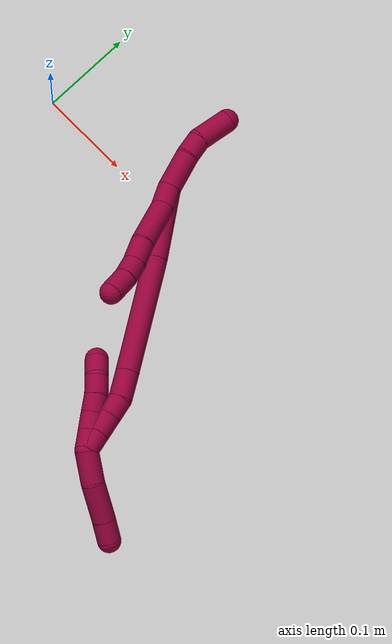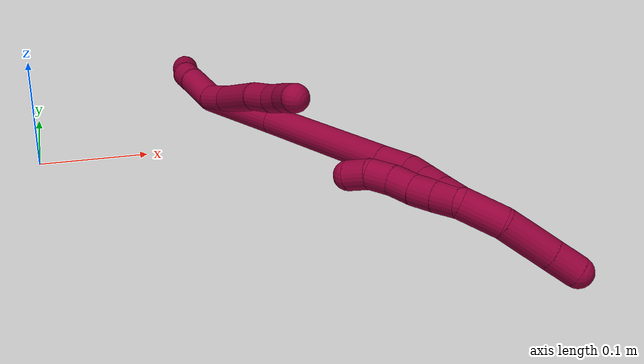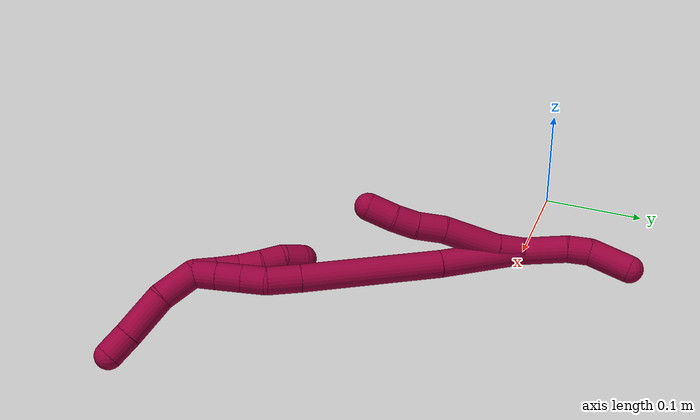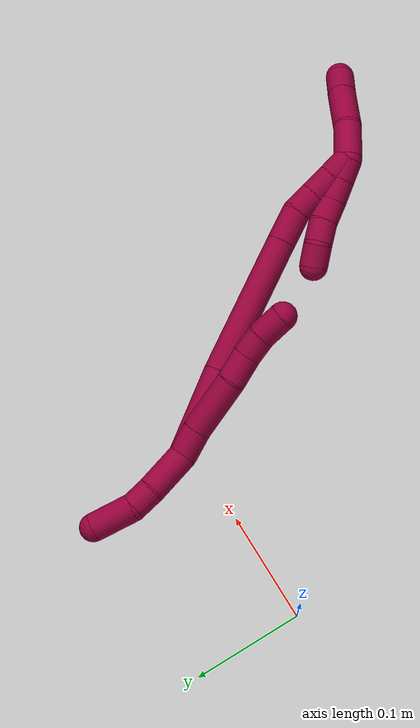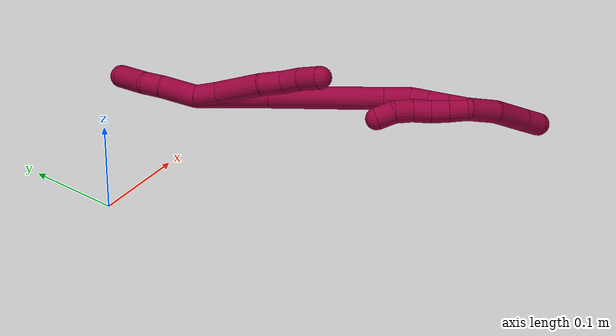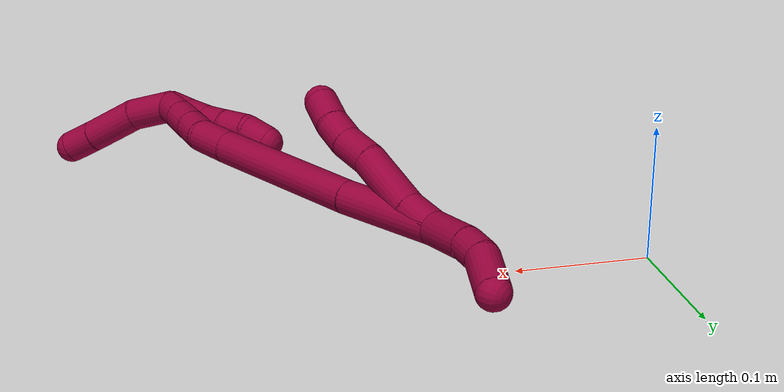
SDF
<sdf version="1.7">
 <world name="default">
  <model name="8">
   <static>0</static>
   <link name="8">
    <collision name="collision-cylinder-e_1_2_8">
     <pose>-0.001382 -0.003157 0.012522 0.246942 -0.10661 -0.013243</pose>
     <geometry><cylinder><radius>0.0125</radius><length>0.025975</length></cylinder></geometry>
     <surface>
      <friction><ode><mu>1.16</mu><mu2>1.16</mu2><slip1>0</slip1><slip2>0</slip2></ode></friction>
      <contact><ode><kp>1e+06</kp><kd>1</kd><max_vel>0</max_vel><min_depth>0.001</min_depth></ode></contact>
     </surface>
    </collision>
    <visual name="visual-cylinder-e_1_2_8">
     <pose>-0.001382 -0.003157 0.012522 0.246942 -0.10661 -0.013243</pose>
     <geometry><cylinder><radius>0.0125</radius><length>0.025975</length></cylinder></geometry>
     <material><ambient>0.584314 0 0.227451 1</ambient></material>
    </visual>
    <collision name="collision-cylinder-e_2_8_9">
     <pose>-0.006817 -0.016858 0.048483 0.422776 -0.156396 -0.033627</pose>
     <geometry><cylinder><radius>0.0125</radius><length>0.052037</length></cylinder></geometry>
     <surface>
      <friction><ode><mu>1.16</mu><mu2>1.16</mu2><slip1>0</slip1><slip2>0</slip2></ode></friction>
      <contact><ode><kp>1e+06</kp><kd>1</kd><max_vel>0</max_vel><min_depth>0.001</min_depth></ode></contact>
     </surface>
    </collision>
    <visual name="visual-cylinder-e_2_8_9">
     <pose>-0.006817 -0.016858 0.048483 0.422776 -0.156396 -0.033627</pose>
     <geometry><cylinder><radius>0.0125</radius><length>0.052037</length></cylinder></geometry>
     <material><ambient>0.584314 0 0.227451 1</ambient></material>
    </visual>
    <collision name="collision-cylinder-e_3_9_10">
     <pose>-0.011669 -0.030841 0.084344 0.269976 -0.061983 -0.008421</pose>
     <geometry><cylinder><radius>0.0125</radius><length>0.025831</length></cylinder></geometry>
     <surface>
      <friction><ode><mu>1.16</mu><mu2>1.16</mu2><slip1>0</slip1><slip2>0</slip2></ode></friction>
      <contact><ode><kp>1e+06</kp><kd>1</kd><max_vel>0</max_vel><min_depth>0.001</min_depth></ode></contact>
     </surface>
    </collision>
    <visual name="visual-cylinder-e_3_9_10">
     <pose>-0.011669 -0.030841 0.084344 0.269976 -0.061983 -0.008421</pose>
     <geometry><cylinder><radius>0.0125</radius><length>0.025831</length></cylinder></geometry>
     <material><ambient>0.584314 0 0.227451 1</ambient></material>
    </visual>
    <collision name="collision-cylinder-e_4_10_11">
     <pose>-0.01392 -0.038699 0.106273 0.435229 -0.137475 -0.030444</pose>
     <geometry><cylinder><radius>0.0125</radius><length>0.021165</length></cylinder></geometry>
     <surface>
      <friction><ode><mu>1.16</mu><mu2>1.16</mu2><slip1>0</slip1><slip2>0</slip2></ode></friction>
      <contact><ode><kp>1e+06</kp><kd>1</kd><max_vel>0</max_vel><min_depth>0.001</min_depth></ode></contact>
     </surface>
    </collision>
    <visual name="visual-cylinder-e_4_10_11">
     <pose>-0.01392 -0.038699 0.106273 0.435229 -0.137475 -0.030444</pose>
     <geometry><cylinder><radius>0.0125</radius><length>0.021165</length></cylinder></geometry>
     <material><ambient>0.584314 0 0.227451 1</ambient></material>
    </visual>
    <collision name="collision-cylinder-e_5_11_6">
     <pose>-0.016007 -0.050157 0.126084 0.599198 -0.051003 -0.015758</pose>
     <geometry><cylinder><radius>0.0125</radius><length>0.024991</length></cylinder></geometry>
     <surface>
      <friction><ode><mu>1.16</mu><mu2>1.16</mu2><slip1>0</slip1><slip2>0</slip2></ode></friction>
      <contact><ode><kp>1e+06</kp><kd>1</kd><max_vel>0</max_vel><min_depth>0.001</min_depth></ode></contact>
     </surface>
    </collision>
    <visual name="visual-cylinder-e_5_11_6">
     <pose>-0.016007 -0.050157 0.126084 0.599198 -0.051003 -0.015758</pose>
     <geometry><cylinder><radius>0.0125</radius><length>0.024991</length></cylinder></geometry>
     <material><ambient>0.584314 0 0.227451 1</ambient></material>
    </visual>
    <collision name="collision-cylinder-e_1_2_12">
     <pose>-0.006131 0.005028 -0.018652 -2.87828 -0.307335 1.72685</pose>
     <geometry><cylinder><radius>0.0125</radius><length>0.040534</length></cylinder></geometry>
     <surface>
      <friction><ode><mu>1.16</mu><mu2>1.16</mu2><slip1>0</slip1><slip2>0</slip2></ode></friction>
      <contact><ode><kp>1e+06</kp><kd>1</kd><max_vel>0</max_vel><min_depth>0.001</min_depth></ode></contact>
     </surface>
    </collision>
    <visual name="visual-cylinder-e_1_2_12">
     <pose>-0.006131 0.005028 -0.018652 -2.87828 -0.307335 1.72685</pose>
     <geometry><cylinder><radius>0.0125</radius><length>0.040534</length></cylinder></geometry>
     <material><ambient>0.584314 0 0.227451 1</ambient></material>
    </visual>
    <collision name="collision-cylinder-e_2_12_13">
     <pose>-0.014522 0.014244 -0.04676 -2.72471 -0.215063 0.943802</pose>
     <geometry><cylinder><radius>0.0125</radius><length>0.021172</length></cylinder></geometry>
     <surface>
      <friction><ode><mu>1.16</mu><mu2>1.16</mu2><slip1>0</slip1><slip2>0</slip2></ode></friction>
      <contact><ode><kp>1e+06</kp><kd>1</kd><max_vel>0</max_vel><min_depth>0.001</min_depth></ode></contact>
     </surface>
    </collision>
    <visual name="visual-cylinder-e_2_12_13">
     <pose>-0.014522 0.014244 -0.04676 -2.72471 -0.215063 0.943802</pose>
     <geometry><cylinder><radius>0.0125</radius><length>0.021172</length></cylinder></geometry>
     <material><ambient>0.584314 0 0.227451 1</ambient></material>
    </visual>
    <collision name="collision-cylinder-e_3_13_5">
     <pose>-0.02038 0.031398 -0.069837 -2.3808 -0.189115 0.465747</pose>
     <geometry><cylinder><radius>0.0125</radius><length>0.038294</length></cylinder></geometry>
     <surface>
      <friction><ode><mu>1.16</mu><mu2>1.16</mu2><slip1>0</slip1><slip2>0</slip2></ode></friction>
      <contact><ode><kp>1e+06</kp><kd>1</kd><max_vel>0</max_vel><min_depth>0.001</min_depth></ode></contact>
     </surface>
    </collision>
    <visual name="visual-cylinder-e_3_13_5">
     <pose>-0.02038 0.031398 -0.069837 -2.3808 -0.189115 0.465747</pose>
     <geometry><cylinder><radius>0.0125</radius><length>0.038294</length></cylinder></geometry>
     <material><ambient>0.584314 0 0.227451 1</ambient></material>
    </visual>
    <collision name="collision-cylinder-e_1_2_14">
     <pose>0.002574 -0.000787 0.039432 0.019968 0.065164 0.000651</pose>
     <geometry><cylinder><radius>0.0125</radius><length>0.079047</length></cylinder></geometry>
     <surface>
      <friction><ode><mu>1.16</mu><mu2>1.16</mu2><slip1>0</slip1><slip2>0</slip2></ode></friction>
      <contact><ode><kp>1e+06</kp><kd>1</kd><max_vel>0</max_vel><min_depth>0.001</min_depth></ode></contact>
     </surface>
    </collision>
    <visual name="visual-cylinder-e_1_2_14">
     <pose>0.002574 -0.000787 0.039432 0.019968 0.065164 0.000651</pose>
     <geometry><cylinder><radius>0.0125</radius><length>0.079047</length></cylinder></geometry>
     <material><ambient>0.584314 0 0.227451 1</ambient></material>
    </visual>
    <collision name="collision-cylinder-e_2_14_15">
     <pose>0.009521 -0.006425 0.14166 0.077086 0.069335 0.002675</pose>
     <geometry><cylinder><radius>0.0125</radius><length>0.12627</length></cylinder></geometry>
     <surface>
      <friction><ode><mu>1.16</mu><mu2>1.16</mu2><slip1>0</slip1><slip2>0</slip2></ode></friction>
      <contact><ode><kp>1e+06</kp><kd>1</kd><max_vel>0</max_vel><min_depth>0.001</min_depth></ode></contact>
     </surface>
    </collision>
    <visual name="visual-cylinder-e_2_14_15">
     <pose>0.009521 -0.006425 0.14166 0.077086 0.069335 0.002675</pose>
     <geometry><cylinder><radius>0.0125</radius><length>0.12627</length></cylinder></geometry>
     <material><ambient>0.584314 0 0.227451 1</ambient></material>
    </visual>
    <collision name="collision-cylinder-e_3_15_16">
     <pose>0.014729 -0.012742 0.219339 0.098234 0.055677 0.002738</pose>
     <geometry><cylinder><radius>0.0125</radius><length>0.029958</length></cylinder></geometry>
     <surface>
      <friction><ode><mu>1.16</mu><mu2>1.16</mu2><slip1>0</slip1><slip2>0</slip2></ode></friction>
      <contact><ode><kp>1e+06</kp><kd>1</kd><max_vel>0</max_vel><min_depth>0.001</min_depth></ode></contact>
     </surface>
    </collision>
    <visual name="visual-cylinder-e_3_15_16">
     <pose>0.014729 -0.012742 0.219339 0.098234 0.055677 0.002738</pose>
     <geometry><cylinder><radius>0.0125</radius><length>0.029958</length></cylinder></geometry>
     <material><ambient>0.584314 0 0.227451 1</ambient></material>
    </visual>
    <collision name="collision-cylinder-e_4_16_17">
     <pose>0.017719 -0.018014 0.243781 0.378856 0.206619 0.039751</pose>
     <geometry><cylinder><radius>0.0125</radius><length>0.021022</length></cylinder></geometry>
     <surface>
      <friction><ode><mu>1.16</mu><mu2>1.16</mu2><slip1>0</slip1><slip2>0</slip2></ode></friction>
      <contact><ode><kp>1e+06</kp><kd>1</kd><max_vel>0</max_vel><min_depth>0.001</min_depth></ode></contact>
     </surface>
    </collision>
    <visual name="visual-cylinder-e_4_16_17">
     <pose>0.017719 -0.018014 0.243781 0.378856 0.206619 0.039751</pose>
     <geometry><cylinder><radius>0.0125</radius><length>0.021022</length></cylinder></geometry>
     <material><ambient>0.584314 0 0.227451 1</ambient></material>
    </visual>
    <collision name="collision-cylinder-e_5_17_18">
     <pose>0.022133 -0.025867 0.263533 0.377958 0.203032 0.038961</pose>
     <geometry><cylinder><radius>0.0125</radius><length>0.022398</length></cylinder></geometry>
     <surface>
      <friction><ode><mu>1.16</mu><mu2>1.16</mu2><slip1>0</slip1><slip2>0</slip2></ode></friction>
      <contact><ode><kp>1e+06</kp><kd>1</kd><max_vel>0</max_vel><min_depth>0.001</min_depth></ode></contact>
     </surface>
    </collision>
    <visual name="visual-cylinder-e_5_17_18">
     <pose>0.022133 -0.025867 0.263533 0.377958 0.203032 0.038961</pose>
     <geometry><cylinder><radius>0.0125</radius><length>0.022398</length></cylinder></geometry>
     <material><ambient>0.584314 0 0.227451 1</ambient></material>
    </visual>
    <collision name="collision-cylinder-e_6_18_1">
     <pose>0.026458 -0.033805 0.283427 0.381463 0.19527 0.037818</pose>
     <geometry><cylinder><radius>0.0125</radius><length>0.021306</length></cylinder></geometry>
     <surface>
      <friction><ode><mu>1.16</mu><mu2>1.16</mu2><slip1>0</slip1><slip2>0</slip2></ode></friction>
      <contact><ode><kp>1e+06</kp><kd>1</kd><max_vel>0</max_vel><min_depth>0.001</min_depth></ode></contact>
     </surface>
    </collision>
    <visual name="visual-cylinder-e_6_18_1">
     <pose>0.026458 -0.033805 0.283427 0.381463 0.19527 0.037818</pose>
     <geometry><cylinder><radius>0.0125</radius><length>0.021306</length></cylinder></geometry>
     <material><ambient>0.584314 0 0.227451 1</ambient></material>
    </visual>
    <collision name="collision-cylinder-e_1_1_19">
     <pose>0.03153 -0.02996 0.308369 -0.469619 0.17403 -0.041731</pose>
     <geometry><cylinder><radius>0.0125</radius><length>0.03471</length></cylinder></geometry>
     <surface>
      <friction><ode><mu>1.16</mu><mu2>1.16</mu2><slip1>0</slip1><slip2>0</slip2></ode></friction>
      <contact><ode><kp>1e+06</kp><kd>1</kd><max_vel>0</max_vel><min_depth>0.001</min_depth></ode></contact>
     </surface>
    </collision>
    <visual name="visual-cylinder-e_1_1_19">
     <pose>0.03153 -0.02996 0.308369 -0.469619 0.17403 -0.041731</pose>
     <geometry><cylinder><radius>0.0125</radius><length>0.03471</length></cylinder></geometry>
     <material><ambient>0.584314 0 0.227451 1</ambient></material>
    </visual>
    <collision name="collision-cylinder-e_2_19_20">
     <pose>0.041058 -0.009842 0.339179 -0.671916 0.316857 -0.111465</pose>
     <geometry><cylinder><radius>0.0125</radius><length>0.041869</length></cylinder></geometry>
     <surface>
      <friction><ode><mu>1.16</mu><mu2>1.16</mu2><slip1>0</slip1><slip2>0</slip2></ode></friction>
      <contact><ode><kp>1e+06</kp><kd>1</kd><max_vel>0</max_vel><min_depth>0.001</min_depth></ode></contact>
     </surface>
    </collision>
    <visual name="visual-cylinder-e_2_19_20">
     <pose>0.041058 -0.009842 0.339179 -0.671916 0.316857 -0.111465</pose>
     <geometry><cylinder><radius>0.0125</radius><length>0.041869</length></cylinder></geometry>
     <material><ambient>0.584314 0 0.227451 1</ambient></material>
    </visual>
    <collision name="collision-cylinder-e_3_20_4">
     <pose>0.051241 0.009043 0.363773 -0.624391 0.317886 -0.103378</pose>
     <geometry><cylinder><radius>0.0125</radius><length>0.023422</length></cylinder></geometry>
     <surface>
      <friction><ode><mu>1.16</mu><mu2>1.16</mu2><slip1>0</slip1><slip2>0</slip2></ode></friction>
      <contact><ode><kp>1e+06</kp><kd>1</kd><max_vel>0</max_vel><min_depth>0.001</min_depth></ode></contact>
     </surface>
    </collision>
    <visual name="visual-cylinder-e_3_20_4">
     <pose>0.051241 0.009043 0.363773 -0.624391 0.317886 -0.103378</pose>
     <geometry><cylinder><radius>0.0125</radius><length>0.023422</length></cylinder></geometry>
     <material><ambient>0.584314 0 0.227451 1</ambient></material>
    </visual>
    <collision name="collision-cylinder-e_1_1_21">
     <pose>0.02883 -0.037292 0.283139 -3.10126 0.0305 -1.29488</pose>
     <geometry><cylinder><radius>0.0125</radius><length>0.02</length></cylinder></geometry>
     <surface>
      <friction><ode><mu>1.16</mu><mu2>1.16</mu2><slip1>0</slip1><slip2>0</slip2></ode></friction>
      <contact><ode><kp>1e+06</kp><kd>1</kd><max_vel>0</max_vel><min_depth>0.001</min_depth></ode></contact>
     </surface>
    </collision>
    <visual name="visual-cylinder-e_1_1_21">
     <pose>0.02883 -0.037292 0.283139 -3.10126 0.0305 -1.29488</pose>
     <geometry><cylinder><radius>0.0125</radius><length>0.02</length></cylinder></geometry>
     <material><ambient>0.584314 0 0.227451 1</ambient></material>
    </visual>
    <collision name="collision-cylinder-e_2_21_22">
     <pose>0.029056 -0.036698 0.263154 -3.12246 -0.007927 0.785569</pose>
     <geometry><cylinder><radius>0.0125</radius><length>0.02</length></cylinder></geometry>
     <surface>
      <friction><ode><mu>1.16</mu><mu2>1.16</mu2><slip1>0</slip1><slip2>0</slip2></ode></friction>
      <contact><ode><kp>1e+06</kp><kd>1</kd><max_vel>0</max_vel><min_depth>0.001</min_depth></ode></contact>
     </surface>
    </collision>
    <visual name="visual-cylinder-e_2_21_22">
     <pose>0.029056 -0.036698 0.263154 -3.12246 -0.007927 0.785569</pose>
     <geometry><cylinder><radius>0.0125</radius><length>0.02</length></cylinder></geometry>
     <material><ambient>0.584314 0 0.227451 1</ambient></material>
    </visual>
    <collision name="collision-cylinder-e_3_22_23">
     <pose>0.027699 -0.036671 0.24324 3.12507 -0.128128 -2.88537</pose>
     <geometry><cylinder><radius>0.0125</radius><length>0.02</length></cylinder></geometry>
     <surface>
      <friction><ode><mu>1.16</mu><mu2>1.16</mu2><slip1>0</slip1><slip2>0</slip2></ode></friction>
      <contact><ode><kp>1e+06</kp><kd>1</kd><max_vel>0</max_vel><min_depth>0.001</min_depth></ode></contact>
     </surface>
    </collision>
    <visual name="visual-cylinder-e_3_22_23">
     <pose>0.027699 -0.036671 0.24324 3.12507 -0.128128 -2.88537</pose>
     <geometry><cylinder><radius>0.0125</radius><length>0.02</length></cylinder></geometry>
     <material><ambient>0.584314 0 0.227451 1</ambient></material>
    </visual>
    <collision name="collision-cylinder-e_4_23_24">
     <pose>0.026461 -0.038135 0.223408 3.0112 0.003935 0.060256</pose>
     <geometry><cylinder><radius>0.0125</radius><length>0.02</length></cylinder></geometry>
     <surface>
      <friction><ode><mu>1.16</mu><mu2>1.16</mu2><slip1>0</slip1><slip2>0</slip2></ode></friction>
      <contact><ode><kp>1e+06</kp><kd>1</kd><max_vel>0</max_vel><min_depth>0.001</min_depth></ode></contact>
     </surface>
    </collision>
    <visual name="visual-cylinder-e_4_23_24">
     <pose>0.026461 -0.038135 0.223408 3.0112 0.003935 0.060256</pose>
     <geometry><cylinder><radius>0.0125</radius><length>0.02</length></cylinder></geometry>
     <material><ambient>0.584314 0 0.227451 1</ambient></material>
    </visual>
    <collision name="collision-cylinder-e_5_24_3">
     <pose>0.029485 -0.039354 0.203949 -3.13306 0.303156 -3.08576</pose>
     <geometry><cylinder><radius>0.0125</radius><length>0.02</length></cylinder></geometry>
     <surface>
      <friction><ode><mu>1.16</mu><mu2>1.16</mu2><slip1>0</slip1><slip2>0</slip2></ode></friction>
      <contact><ode><kp>1e+06</kp><kd>1</kd><max_vel>0</max_vel><min_depth>0.001</min_depth></ode></contact>
     </surface>
    </collision>
    <visual name="visual-cylinder-e_5_24_3">
     <pose>0.029485 -0.039354 0.203949 -3.13306 0.303156 -3.08576</pose>
     <geometry><cylinder><radius>0.0125</radius><length>0.02</length></cylinder></geometry>
     <material><ambient>0.584314 0 0.227451 1</ambient></material>
    </visual>
    <collision name="collision-sphere-3">
     <pose>0.032471 -0.039272 0.194406 0 -0 0</pose>
     <geometry><sphere><radius>0.0125</radius></sphere></geometry>
     <surface>
      <friction><ode><mu>1.16</mu><mu2>1.16</mu2><slip1>0</slip1><slip2>0</slip2></ode></friction>
      <contact><ode><kp>1e+06</kp><kd>1</kd><max_vel>0</max_vel><min_depth>0.001</min_depth></ode></contact>
     </surface>
    </collision>
    <visual name="visual-sphere-3">
     <pose>0.032471 -0.039272 0.194406 0 -0 0</pose>
     <geometry><sphere><radius>0.0125</radius></sphere></geometry>
     <material><ambient>0.584314 0 0.227451 1</ambient></material>
    </visual>
    <collision name="collision-sphere-24">
     <pose>0.0265 -0.039435 0.213493 0 -0 0</pose>
     <geometry><sphere><radius>0.0125</radius></sphere></geometry>
     <surface>
      <friction><ode><mu>1.16</mu><mu2>1.16</mu2><slip1>0</slip1><slip2>0</slip2></ode></friction>
      <contact><ode><kp>1e+06</kp><kd>1</kd><max_vel>0</max_vel><min_depth>0.001</min_depth></ode></contact>
     </surface>
    </collision>
    <visual name="visual-sphere-24">
     <pose>0.0265 -0.039435 0.213493 0 -0 0</pose>
     <geometry><sphere><radius>0.0125</radius></sphere></geometry>
     <material><ambient>0.584314 0 0.227451 1</ambient></material>
    </visual>
    <collision name="collision-sphere-23">
     <pose>0.026421 -0.036835 0.233323 0 -0 0</pose>
     <geometry><sphere><radius>0.0125</radius></sphere></geometry>
     <surface>
      <friction><ode><mu>1.16</mu><mu2>1.16</mu2><slip1>0</slip1><slip2>0</slip2></ode></friction>
      <contact><ode><kp>1e+06</kp><kd>1</kd><max_vel>0</max_vel><min_depth>0.001</min_depth></ode></contact>
     </surface>
    </collision>
    <visual name="visual-sphere-23">
     <pose>0.026421 -0.036835 0.233323 0 -0 0</pose>
     <geometry><sphere><radius>0.0125</radius></sphere></geometry>
     <material><ambient>0.584314 0 0.227451 1</ambient></material>
    </visual>
    <collision name="collision-sphere-22">
     <pose>0.028977 -0.036507 0.253156 0 -0 0</pose>
     <geometry><sphere><radius>0.0125</radius></sphere></geometry>
     <surface>
      <friction><ode><mu>1.16</mu><mu2>1.16</mu2><slip1>0</slip1><slip2>0</slip2></ode></friction>
      <contact><ode><kp>1e+06</kp><kd>1</kd><max_vel>0</max_vel><min_depth>0.001</min_depth></ode></contact>
     </surface>
    </collision>
    <visual name="visual-sphere-22">
     <pose>0.028977 -0.036507 0.253156 0 -0 0</pose>
     <geometry><sphere><radius>0.0125</radius></sphere></geometry>
     <material><ambient>0.584314 0 0.227451 1</ambient></material>
    </visual>
    <collision name="collision-sphere-21">
     <pose>0.029135 -0.036889 0.273152 0 -0 0</pose>
     <geometry><sphere><radius>0.0125</radius></sphere></geometry>
     <surface>
      <friction><ode><mu>1.16</mu><mu2>1.16</mu2><slip1>0</slip1><slip2>0</slip2></ode></friction>
      <contact><ode><kp>1e+06</kp><kd>1</kd><max_vel>0</max_vel><min_depth>0.001</min_depth></ode></contact>
     </surface>
    </collision>
    <visual name="visual-sphere-21">
     <pose>0.029135 -0.036889 0.273152 0 -0 0</pose>
     <geometry><sphere><radius>0.0125</radius></sphere></geometry>
     <material><ambient>0.584314 0 0.227451 1</ambient></material>
    </visual>
    <collision name="collision-sphere-4">
     <pose>0.054902 0.015547 0.372798 0 -0 0</pose>
     <geometry><sphere><radius>0.0125</radius></sphere></geometry>
     <surface>
      <friction><ode><mu>1.16</mu><mu2>1.16</mu2><slip1>0</slip1><slip2>0</slip2></ode></friction>
      <contact><ode><kp>1e+06</kp><kd>1</kd><max_vel>0</max_vel><min_depth>0.001</min_depth></ode></contact>
     </surface>
    </collision>
    <visual name="visual-sphere-4">
     <pose>0.054902 0.015547 0.372798 0 -0 0</pose>
     <geometry><sphere><radius>0.0125</radius></sphere></geometry>
     <material><ambient>0.584314 0 0.227451 1</ambient></material>
    </visual>
    <collision name="collision-sphere-20">
     <pose>0.047581 0.00254 0.354748 0 -0 0</pose>
     <geometry><sphere><radius>0.0125</radius></sphere></geometry>
     <surface>
      <friction><ode><mu>1.16</mu><mu2>1.16</mu2><slip1>0</slip1><slip2>0</slip2></ode></friction>
      <contact><ode><kp>1e+06</kp><kd>1</kd><max_vel>0</max_vel><min_depth>0.001</min_depth></ode></contact>
     </surface>
    </collision>
    <visual name="visual-sphere-20">
     <pose>0.047581 0.00254 0.354748 0 -0 0</pose>
     <geometry><sphere><radius>0.0125</radius></sphere></geometry>
     <material><ambient>0.584314 0 0.227451 1</ambient></material>
    </visual>
    <collision name="collision-sphere-6">
     <pose>-0.016644 -0.057195 0.13639 0 -0 0</pose>
     <geometry><sphere><radius>0.0125</radius></sphere></geometry>
     <surface>
      <friction><ode><mu>1.16</mu><mu2>1.16</mu2><slip1>0</slip1><slip2>0</slip2></ode></friction>
      <contact><ode><kp>1e+06</kp><kd>1</kd><max_vel>0</max_vel><min_depth>0.001</min_depth></ode></contact>
     </surface>
    </collision>
    <visual name="visual-sphere-6">
     <pose>-0.016644 -0.057195 0.13639 0 -0 0</pose>
     <geometry><sphere><radius>0.0125</radius></sphere></geometry>
     <material><ambient>0.584314 0 0.227451 1</ambient></material>
    </visual>
    <collision name="collision-sphere-11">
     <pose>-0.01537 -0.043119 0.115779 0 -0 0</pose>
     <geometry><sphere><radius>0.0125</radius></sphere></geometry>
     <surface>
      <friction><ode><mu>1.16</mu><mu2>1.16</mu2><slip1>0</slip1><slip2>0</slip2></ode></friction>
      <contact><ode><kp>1e+06</kp><kd>1</kd><max_vel>0</max_vel><min_depth>0.001</min_depth></ode></contact>
     </surface>
    </collision>
    <visual name="visual-sphere-11">
     <pose>-0.01537 -0.043119 0.115779 0 -0 0</pose>
     <geometry><sphere><radius>0.0125</radius></sphere></geometry>
     <material><ambient>0.584314 0 0.227451 1</ambient></material>
    </visual>
    <collision name="collision-sphere-10">
     <pose>-0.012469 -0.034279 0.096768 0 -0 0</pose>
     <geometry><sphere><radius>0.0125</radius></sphere></geometry>
     <surface>
      <friction><ode><mu>1.16</mu><mu2>1.16</mu2><slip1>0</slip1><slip2>0</slip2></ode></friction>
      <contact><ode><kp>1e+06</kp><kd>1</kd><max_vel>0</max_vel><min_depth>0.001</min_depth></ode></contact>
     </surface>
    </collision>
    <visual name="visual-sphere-10">
     <pose>-0.012469 -0.034279 0.096768 0 -0 0</pose>
     <geometry><sphere><radius>0.0125</radius></sphere></geometry>
     <material><ambient>0.584314 0 0.227451 1</ambient></material>
    </visual>
    <collision name="collision-sphere-9">
     <pose>-0.010869 -0.027403 0.071921 0 -0 0</pose>
     <geometry><sphere><radius>0.0125</radius></sphere></geometry>
     <surface>
      <friction><ode><mu>1.16</mu><mu2>1.16</mu2><slip1>0</slip1><slip2>0</slip2></ode></friction>
      <contact><ode><kp>1e+06</kp><kd>1</kd><max_vel>0</max_vel><min_depth>0.001</min_depth></ode></contact>
     </surface>
    </collision>
    <visual name="visual-sphere-9">
     <pose>-0.010869 -0.027403 0.071921 0 -0 0</pose>
     <geometry><sphere><radius>0.0125</radius></sphere></geometry>
     <material><ambient>0.584314 0 0.227451 1</ambient></material>
    </visual>
    <collision name="collision-sphere-2">
     <geometry><sphere><radius>0.0125</radius></sphere></geometry>
     <surface>
      <friction><ode><mu>1.16</mu><mu2>1.16</mu2><slip1>0</slip1><slip2>0</slip2></ode></friction>
      <contact><ode><kp>1e+06</kp><kd>1</kd><max_vel>0</max_vel><min_depth>0.001</min_depth></ode></contact>
     </surface>
    </collision>
    <visual name="visual-sphere-2">
     <geometry><sphere><radius>0.0125</radius></sphere></geometry>
     <material><ambient>0.584314 0 0.227451 1</ambient></material>
    </visual>
    <collision name="collision-sphere-19">
     <pose>0.034535 -0.022225 0.323611 0 -0 0</pose>
     <geometry><sphere><radius>0.0125</radius></sphere></geometry>
     <surface>
      <friction><ode><mu>1.16</mu><mu2>1.16</mu2><slip1>0</slip1><slip2>0</slip2></ode></friction>
      <contact><ode><kp>1e+06</kp><kd>1</kd><max_vel>0</max_vel><min_depth>0.001</min_depth></ode></contact>
     </surface>
    </collision>
    <visual name="visual-sphere-19">
     <pose>0.034535 -0.022225 0.323611 0 -0 0</pose>
     <geometry><sphere><radius>0.0125</radius></sphere></geometry>
     <material><ambient>0.584314 0 0.227451 1</ambient></material>
    </visual>
    <collision name="collision-sphere-8">
     <pose>-0.002764 -0.006313 0.025044 0 -0 0</pose>
     <geometry><sphere><radius>0.0125</radius></sphere></geometry>
     <surface>
      <friction><ode><mu>1.16</mu><mu2>1.16</mu2><slip1>0</slip1><slip2>0</slip2></ode></friction>
      <contact><ode><kp>1e+06</kp><kd>1</kd><max_vel>0</max_vel><min_depth>0.001</min_depth></ode></contact>
     </surface>
    </collision>
    <visual name="visual-sphere-8">
     <pose>-0.002764 -0.006313 0.025044 0 -0 0</pose>
     <geometry><sphere><radius>0.0125</radius></sphere></geometry>
     <material><ambient>0.584314 0 0.227451 1</ambient></material>
    </visual>
    <collision name="collision-sphere-12">
     <pose>-0.012262 0.010056 -0.037303 0 -0 0</pose>
     <geometry><sphere><radius>0.0125</radius></sphere></geometry>
     <surface>
      <friction><ode><mu>1.16</mu><mu2>1.16</mu2><slip1>0</slip1><slip2>0</slip2></ode></friction>
      <contact><ode><kp>1e+06</kp><kd>1</kd><max_vel>0</max_vel><min_depth>0.001</min_depth></ode></contact>
     </surface>
    </collision>
    <visual name="visual-sphere-12">
     <pose>-0.012262 0.010056 -0.037303 0 -0 0</pose>
     <geometry><sphere><radius>0.0125</radius></sphere></geometry>
     <material><ambient>0.584314 0 0.227451 1</ambient></material>
    </visual>
    <collision name="collision-sphere-13">
     <pose>-0.016781 0.018431 -0.056216 0 -0 0</pose>
     <geometry><sphere><radius>0.0125</radius></sphere></geometry>
     <surface>
      <friction><ode><mu>1.16</mu><mu2>1.16</mu2><slip1>0</slip1><slip2>0</slip2></ode></friction>
      <contact><ode><kp>1e+06</kp><kd>1</kd><max_vel>0</max_vel><min_depth>0.001</min_depth></ode></contact>
     </surface>
    </collision>
    <visual name="visual-sphere-13">
     <pose>-0.016781 0.018431 -0.056216 0 -0 0</pose>
     <geometry><sphere><radius>0.0125</radius></sphere></geometry>
     <material><ambient>0.584314 0 0.227451 1</ambient></material>
    </visual>
    <collision name="collision-sphere-5">
     <pose>-0.02398 0.044364 -0.083457 0 -0 0</pose>
     <geometry><sphere><radius>0.0125</radius></sphere></geometry>
     <surface>
      <friction><ode><mu>1.16</mu><mu2>1.16</mu2><slip1>0</slip1><slip2>0</slip2></ode></friction>
      <contact><ode><kp>1e+06</kp><kd>1</kd><max_vel>0</max_vel><min_depth>0.001</min_depth></ode></contact>
     </surface>
    </collision>
    <visual name="visual-sphere-5">
     <pose>-0.02398 0.044364 -0.083457 0 -0 0</pose>
     <geometry><sphere><radius>0.0125</radius></sphere></geometry>
     <material><ambient>0.584314 0 0.227451 1</ambient></material>
    </visual>
    <collision name="collision-sphere-14">
     <pose>0.005147 -0.001575 0.078864 0 -0 0</pose>
     <geometry><sphere><radius>0.0125</radius></sphere></geometry>
     <surface>
      <friction><ode><mu>1.16</mu><mu2>1.16</mu2><slip1>0</slip1><slip2>0</slip2></ode></friction>
      <contact><ode><kp>1e+06</kp><kd>1</kd><max_vel>0</max_vel><min_depth>0.001</min_depth></ode></contact>
     </surface>
    </collision>
    <visual name="visual-sphere-14">
     <pose>0.005147 -0.001575 0.078864 0 -0 0</pose>
     <geometry><sphere><radius>0.0125</radius></sphere></geometry>
     <material><ambient>0.584314 0 0.227451 1</ambient></material>
    </visual>
    <collision name="collision-sphere-15">
     <pose>0.013895 -0.011276 0.204456 0 -0 0</pose>
     <geometry><sphere><radius>0.0125</radius></sphere></geometry>
     <surface>
      <friction><ode><mu>1.16</mu><mu2>1.16</mu2><slip1>0</slip1><slip2>0</slip2></ode></friction>
      <contact><ode><kp>1e+06</kp><kd>1</kd><max_vel>0</max_vel><min_depth>0.001</min_depth></ode></contact>
     </surface>
    </collision>
    <visual name="visual-sphere-15">
     <pose>0.013895 -0.011276 0.204456 0 -0 0</pose>
     <geometry><sphere><radius>0.0125</radius></sphere></geometry>
     <material><ambient>0.584314 0 0.227451 1</ambient></material>
    </visual>
    <collision name="collision-sphere-16">
     <pose>0.015562 -0.014209 0.234223 0 -0 0</pose>
     <geometry><sphere><radius>0.0125</radius></sphere></geometry>
     <surface>
      <friction><ode><mu>1.16</mu><mu2>1.16</mu2><slip1>0</slip1><slip2>0</slip2></ode></friction>
      <contact><ode><kp>1e+06</kp><kd>1</kd><max_vel>0</max_vel><min_depth>0.001</min_depth></ode></contact>
     </surface>
    </collision>
    <visual name="visual-sphere-16">
     <pose>0.015562 -0.014209 0.234223 0 -0 0</pose>
     <geometry><sphere><radius>0.0125</radius></sphere></geometry>
     <material><ambient>0.584314 0 0.227451 1</ambient></material>
    </visual>
    <collision name="collision-sphere-17">
     <pose>0.019875 -0.021819 0.253339 0 -0 0</pose>
     <geometry><sphere><radius>0.0125</radius></sphere></geometry>
     <surface>
      <friction><ode><mu>1.16</mu><mu2>1.16</mu2><slip1>0</slip1><slip2>0</slip2></ode></friction>
      <contact><ode><kp>1e+06</kp><kd>1</kd><max_vel>0</max_vel><min_depth>0.001</min_depth></ode></contact>
     </surface>
    </collision>
    <visual name="visual-sphere-17">
     <pose>0.019875 -0.021819 0.253339 0 -0 0</pose>
     <geometry><sphere><radius>0.0125</radius></sphere></geometry>
     <material><ambient>0.584314 0 0.227451 1</ambient></material>
    </visual>
    <collision name="collision-sphere-18">
     <pose>0.024391 -0.029915 0.273728 0 -0 0</pose>
     <geometry><sphere><radius>0.0125</radius></sphere></geometry>
     <surface>
      <friction><ode><mu>1.16</mu><mu2>1.16</mu2><slip1>0</slip1><slip2>0</slip2></ode></friction>
      <contact><ode><kp>1e+06</kp><kd>1</kd><max_vel>0</max_vel><min_depth>0.001</min_depth></ode></contact>
     </surface>
    </collision>
    <visual name="visual-sphere-18">
     <pose>0.024391 -0.029915 0.273728 0 -0 0</pose>
     <geometry><sphere><radius>0.0125</radius></sphere></geometry>
     <material><ambient>0.584314 0 0.227451 1</ambient></material>
    </visual>
    <collision name="collision-sphere-1">
     <pose>0.028525 -0.037695 0.293127 0 -0 0</pose>
     <geometry><sphere><radius>0.0125</radius></sphere></geometry>
     <surface>
      <friction><ode><mu>1.16</mu><mu2>1.16</mu2><slip1>0</slip1><slip2>0</slip2></ode></friction>
      <contact><ode><kp>1e+06</kp><kd>1</kd><max_vel>0</max_vel><min_depth>0.001</min_depth></ode></contact>
     </surface>
    </collision>
    <visual name="visual-sphere-1">
     <pose>0.028525 -0.037695 0.293127 0 -0 0</pose>
     <geometry><sphere><radius>0.0125</radius></sphere></geometry>
     <material><ambient>0.584314 0 0.227451 1</ambient></material>
    </visual>
    <inertial>
     <pose>0.009867 -0.01341 0.144547 0 -0 0</pose>
     <mass>0.75</mass>
     <inertia>
      <ixx>0.000277</ixx>
      <ixy>0</ixy>
      <ixz>0</ixz>
      <iyy>0.000264</iyy>
      <iyz>0</iyz>
      <izz>2.3e-05</izz>
     </inertia>
    </inertial>
   </link>
   <pose>0.164779 0.013637 0.046419 -1.45386 1.0733 -2.37019</pose>
  </model>
 </world>
</sdf>
